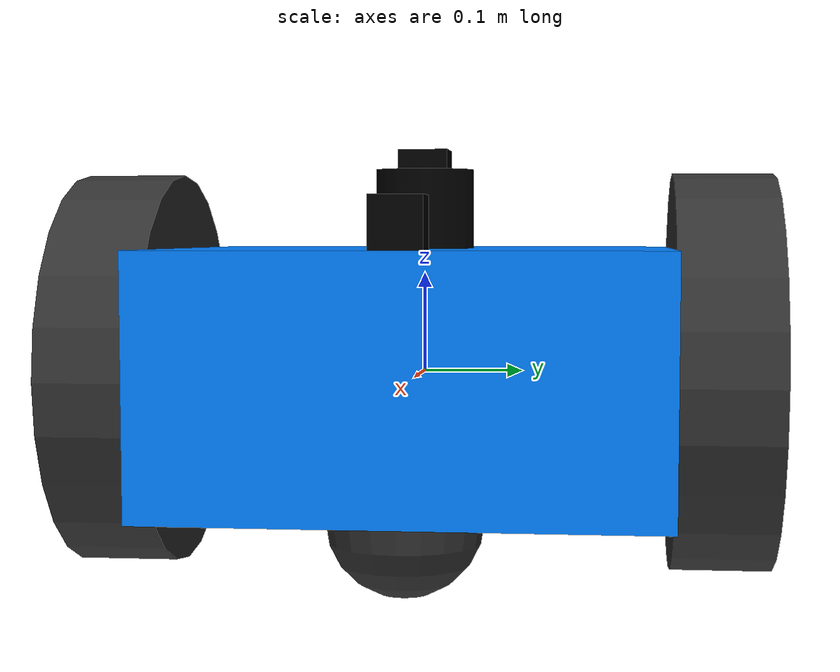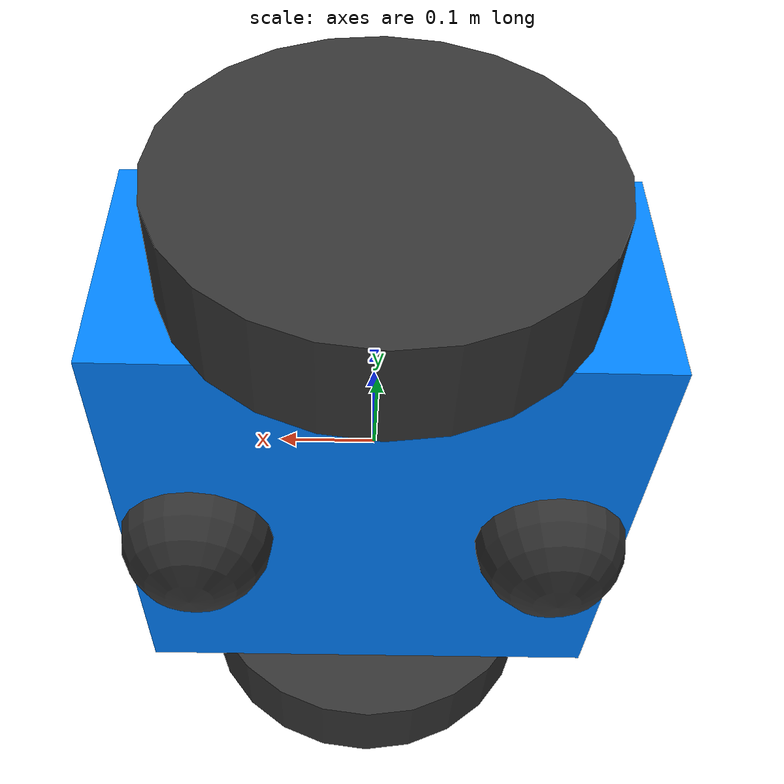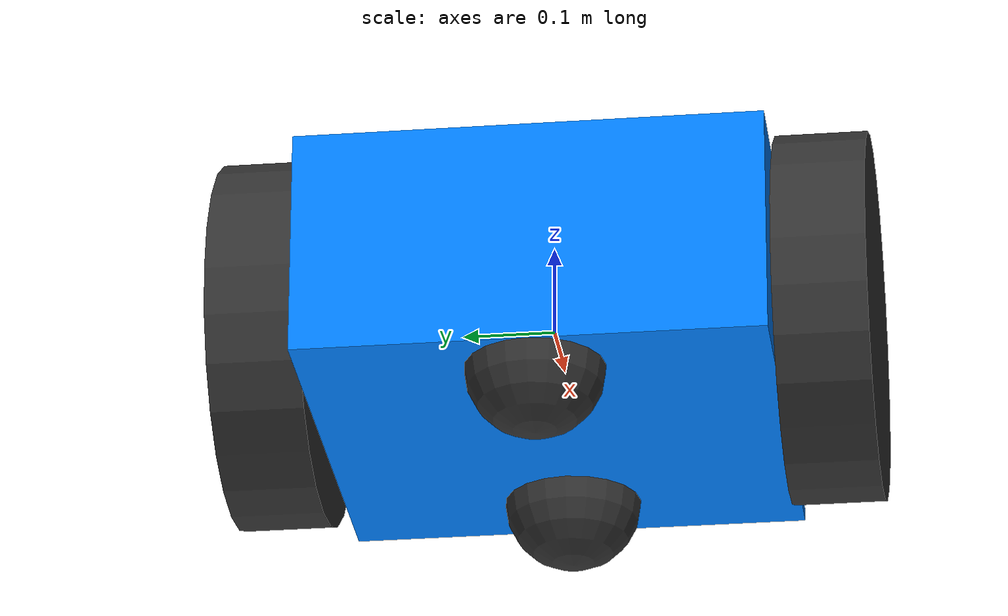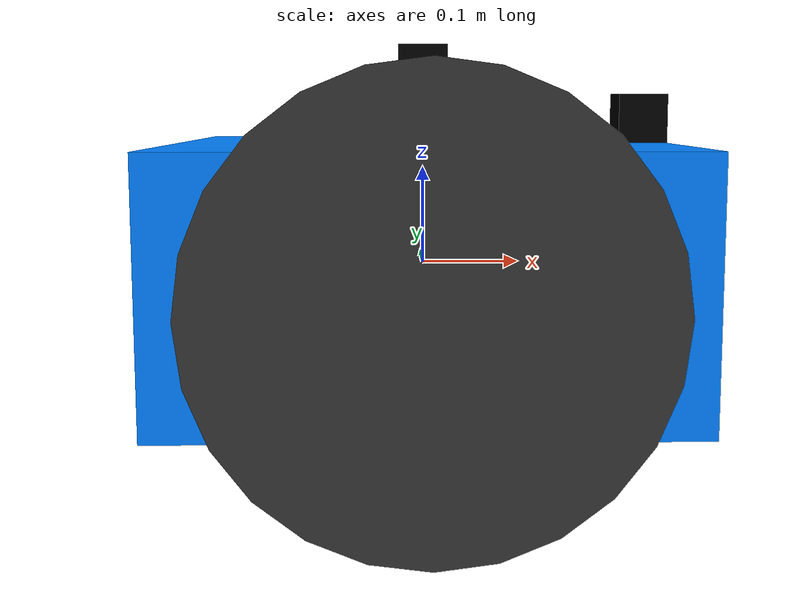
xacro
<?xml version="1.0"?>
<robot xmlns:xacro="http://ros.org/wiki/xacro" name="dd_robot">

  <!-- Basic properties -->
  <xacro:property name="body_length" value="0.5"/>
  <xacro:property name="body_width" value="0.5"/>
  <xacro:property name="body_height" value="0.25"/>
  <xacro:property name="wheel_radius" value="0.2"/>
  <xacro:property name="wheel_thickness" value="0.1"/>
  <xacro:property name="caster_radius" value="0.075"/>
  <xacro:property name="caster_offset_x" value="0.175"/>
  <xacro:property name="wheel_offset_y" value="0.30"/>
  <xacro:property name="body_mass" value="5"/>
  <xacro:property name="wheel_mass" value="0.5"/>
  <xacro:property name="caster_mass" value="0.5"/>

  <!-- Base Link -->
  <link name="base_link">
    <visual>
      <origin xyz="0 0 0" rpy="0 0 0"/>
      <geometry>
        <box size="${body_length} ${body_width} ${body_height}"/>
      </geometry>
      <material name="blue">
        <color rgba="0 0.5 1 1"/>
      </material>
    </visual>
    <collision>
      <origin xyz="0 0 0" rpy="0 0 0"/>
      <geometry>
        <box size="${body_length} ${body_width} ${body_height}"/>
      </geometry>
    </collision>
    <inertial>
      <mass value="${body_mass}"/>
      <inertia ixx="0.13" ixy="0.0" ixz="0.0" iyy="0.21" iyz="0.0" izz="0.13"/>
    </inertial>
  </link>

  <!-- Caster -->
  <link name="caster">
    <visual>
      <origin xyz="0 0 0" rpy="0 0 0"/>
      <geometry>
        <sphere radius="${caster_radius}"/>
      </geometry>
      <material name="darkgray">
        <color rgba=".2 .2 .2 1"/>
      </material>
    </visual>
    <collision>
      <origin xyz="0 0 0" rpy="0 0 0"/>
      <geometry>
        <sphere radius="${caster_radius}"/>
      </geometry>
    </collision>
    <inertial>
      <mass value="${caster_mass}"/>
      <inertia ixx="0.0001" ixy="0.0" ixz="0.0" iyy="0.0001" iyz="0.0" izz="0.0001"/>
    </inertial>
  </link>

  <joint name="joint_caster" type="fixed">
    <parent link="base_link"/>
    <child link="caster"/>
    <origin xyz="${caster_offset_x} 0 -${body_height / 2}" rpy="0 0 0"/>
  </joint>

  <!-- Caster -->
  <link name="caster2">
    <visual>
      <origin xyz="0 0 0" rpy="0 0 0"/>
      <geometry>
        <sphere radius="${caster_radius}"/>
      </geometry>
      <material name="darkgray">
        <color rgba=".2 .2 .2 1"/>
      </material>
    </visual>
    <collision>
      <origin xyz="0 0 0" rpy="0 0 0"/>
      <geometry>
        <sphere radius="${caster_radius}"/>
      </geometry>
    </collision>
    <inertial>
      <mass value="${caster_mass}"/>
      <inertia ixx="0.0001" ixy="0.0" ixz="0.0" iyy="0.0001" iyz="0.0" izz="0.0001"/>
    </inertial>
  </link>

  <joint name="joint_caster2" type="fixed">
    <parent link="base_link"/>
    <child link="caster2"/>
    <origin xyz="-${caster_offset_x} 0 -${body_height / 2}" rpy="0 0 0"/>
  </joint>

  <!-- Right Wheel -->
  <link name="right_wheel">
    <visual>
      <origin xyz="0 0 0" rpy="1.570795 0 0"/>
      <geometry>
        <cylinder length="${wheel_thickness}" radius="${wheel_radius}"/>
      </geometry>
      <material name="darkgray">
        <color rgba=".2 .2 .2 1"/>
      </material>
    </visual>
    <collision>
      <origin xyz="0 0 0" rpy="1.570795 0 0"/>
      <geometry>
        <cylinder length="${wheel_thickness}" radius="${wheel_radius}"/>
      </geometry>
    </collision>
    <inertial>
      <mass value="${wheel_mass}"/>
      <inertia ixx="0.01" ixy="0.0" ixz="0.0" iyy="0.005" iyz="0.0" izz="0.005"/>
    </inertial>
  </link>

  <joint name="joint_right_wheel" type="continuous">
    <parent link="base_link"/>
    <child link="right_wheel"/>
    <origin xyz="0 -${wheel_offset_y} 0" rpy="0 0 0"/>
    <axis xyz="0 1 0"/>
  </joint>

  <!-- Left Wheel -->
  <link name="left_wheel">
    <visual>
      <origin xyz="0 0 0" rpy="1.570795 0 0"/>
      <geometry>
        <cylinder length="${wheel_thickness}" radius="${wheel_radius}"/>
      </geometry>
      <material name="darkgray">
        <color rgba=".2 .2 .2 1"/>
      </material>
    </visual>
    <collision>
      <origin xyz="0 0 0" rpy="1.570795 0 0"/>
      <geometry>
        <cylinder length="${wheel_thickness}" radius="${wheel_radius}"/>
      </geometry>
    </collision>
    <inertial>
      <mass value="${wheel_mass}"/>
      <inertia ixx="0.01" ixy="0.0" ixz="0.0" iyy="0.005" iyz="0.0" izz="0.005"/>
    </inertial>
  </link>

  <joint name="joint_left_wheel" type="continuous">
    <parent link="base_link"/>
    <child link="left_wheel"/>
    <origin xyz="0 ${wheel_offset_y} 0" rpy="0 0 0"/>
    <axis xyz="0 1 0"/>
  </joint>

  <!-- Gazebo Material Overrides -->
  <gazebo reference="base_link">
    <material>Gazebo/Blue</material>
  </gazebo>
  <gazebo reference="right_wheel">
    <material>Gazebo/Black</material>
  </gazebo>
  <gazebo reference="left_wheel">
    <material>Gazebo/Black</material>
  </gazebo>
  <gazebo reference="caster">
    <material>Gazebo/Red</material>
  </gazebo>

  <!-- Differential Drive Plugin for Ignition Fortress -->
  <gazebo>
    <plugin name="ignition::gazebo::systems::DiffDrive" filename="libignition-gazebo-diff-drive-system.so">
      <left_joint>joint_left_wheel</left_joint>
      <right_joint>joint_right_wheel</right_joint>
      <wheel_separation>${2 * wheel_offset_y}</wheel_separation>
      <wheel_radius>${wheel_radius}</wheel_radius>
    </plugin>
  </gazebo>

  <!-- LiDAR Link -->
  <link name="lidar_link">
    <visual>
      <origin xyz="0 0 0" rpy="0 0 0"/>
      <geometry>
        <cylinder radius="0.05" length="0.08"/>
      </geometry>
      <material name="black">
        <color rgba="0 0 0 1"/>
      </material>
    </visual>
    <collision>
      <origin xyz="0 0 0" rpy="0 0 0"/>
      <geometry>
        <cylinder radius="0.05" length="0.08"/>
      </geometry>
    </collision>
    <inertial>
      <mass value="0.1"/>
      <inertia ixx="1e-6" ixy="0" ixz="0" iyy="1e-6" iyz="0" izz="1e-6"/>
    </inertial>
  </link>

  <!-- Joint -->
  <joint name="lidar_joint" type="fixed">
    <parent link="base_link"/>
    <child link="lidar_link"/>
    <origin xyz="0 0 0.165" rpy="0 0 0"/>
  </joint>

  <!-- Camera Link -->
  <link name="camera_link">
    <visual>
      <origin xyz="0 0 0" rpy="0 0 0"/>
      <geometry>
        <box size="0.05 0.05 0.05"/>
      </geometry>
      <material name="black">
        <color rgba="0 0 0 1"/>
      </material>
    </visual>
    <collision>
      <origin xyz="0 0 0" rpy="0 0 0"/>
      <geometry>
        <box size="0.05 0.05 0.05"/>
      </geometry>
    </collision>
    <inertial>
      <mass value="0.1"/>
      <inertia ixx="1e-6" ixy="0" ixz="0" iyy="1e-6" iyz="0" izz="1e-6"/>
    </inertial>
  </link>

  <!-- Joint for Camera -->
  <joint name="camera_joint" type="fixed">
    <parent link="base_link"/>
    <child link="camera_link"/>
    <origin xyz="0.225 0 0.15" rpy="0 0 0"/>
  </joint>

  <!-- Gazebo plugin for LiDAR -->
  <gazebo>
    <plugin name="ignition::gazebo::systems::Sensors" filename="libignition-gazebo-sensors-system.so"/>
  </gazebo>

  <gazebo>
    <plugin name="ignition::gazebo::systems::JointStatePublisher" filename="libignition-gazebo-joint-state-publisher-system.so"/>
  </gazebo>

  <!-- Sensor block -->
  <gazebo reference="lidar_link">
    <sensor name="lidar" type="gpu_lidar">
      <pose>0 0 0.04 0 0 0</pose>
      <update_rate>10</update_rate>
      <topic>scan</topic>
      <frame_name>lidar_link</frame_name>
      <visualize>true</visualize>
      <ray>
        <scan>
          <horizontal>
            <samples>360</samples>
            <resolution>1</resolution>
            <min_angle>-3.14</min_angle>
            <max_angle>3.14</max_angle>
          </horizontal>
        </scan>
        <range>
          <min>0.12</min>
          <max>10.0</max>
          <resolution>0.01</resolution>
        </range>
        <noise>
          <type>gaussian</type>
          <mean>0.0</mean>
          <stddev>0.01</stddev>
        </noise>
      </ray>
    </sensor>
  </gazebo>

  <gazebo reference="camera_link">
    <sensor name="camera" type="camera">
      <pose>0.025 0 0 0 0 0</pose>
      <update_rate>30</update_rate>
      <camera>
        <horizontal_fov>1.3962634</horizontal_fov>
        <image>
          <width>640</width>
          <height>480</height>
          <format>R8G8B8</format>
        </image>
        <clip>
          <near>0.1</near>
          <far>100</far>
        </clip>
        <noise>
          <type>gaussian</type>
          <mean>0.0</mean>
          <stddev>0.007</stddev>
        </noise>
      </camera>
      <always_on>true</always_on>
      <visualize>true</visualize>
      <topic>/camera/image_raw</topic>
      <frame_name>camera_link</frame_name>
    </sensor>
  </gazebo>

  <!-- Gazebo plugin for IMU -->
  <gazebo>
    <plugin name="ignition::gazebo::systems::Imu" filename="libignition-gazebo-imu-system.so"/>
  </gazebo>

  <!-- IMU Link -->
  <link name="imu_link">
    <visual>
      <origin xyz="0 0 0" rpy="0 0 0"/>
      <geometry>
        <box size="0.05 0.05 0.02"/>
      </geometry>
      <material name="black">
        <color rgba="0 0 0 1"/>
      </material>
    </visual>
    <collision>
      <origin xyz="0 0 0" rpy="0 0 0"/>
      <geometry>
        <box size="0.05 0.05 0.02"/>
      </geometry>
    </collision>
    <inertial>
      <mass value="0.05"/>
      <inertia ixx="1e-6" ixy="0" ixz="0" iyy="1e-6" iyz="0" izz="1e-6"/>
    </inertial>
  </link>

  <!-- Joint for IMU -->
  <joint name="imu_joint" type="fixed">
    <parent link="base_link"/>
    <child link="imu_link"/>
    <origin xyz="0 0 0.215" rpy="0 0 0"/>
  </joint>

  <!-- Gazebo plugin for IMU -->
  <gazebo reference="imu_link">
    <sensor name="imu_sensor" type="imu">
      <pose>0 0 0 0 0 0</pose>
      <topic>/imu</topic>
      <update_rate>100</update_rate>
      <always_on>true</always_on>
      <visualize>true</visualize>
      <imu>
        <angular_velocity>
          <x>true</x>
          <y>true</y>
          <z>true</z>
        </angular_velocity>
        <linear_acceleration>
          <x>true</x>
          <y>true</y>
          <z>true</z>
        </linear_acceleration>
      </imu>
      <frame_name>imu_link</frame_name>
    </sensor>
  </gazebo>
</robot>
